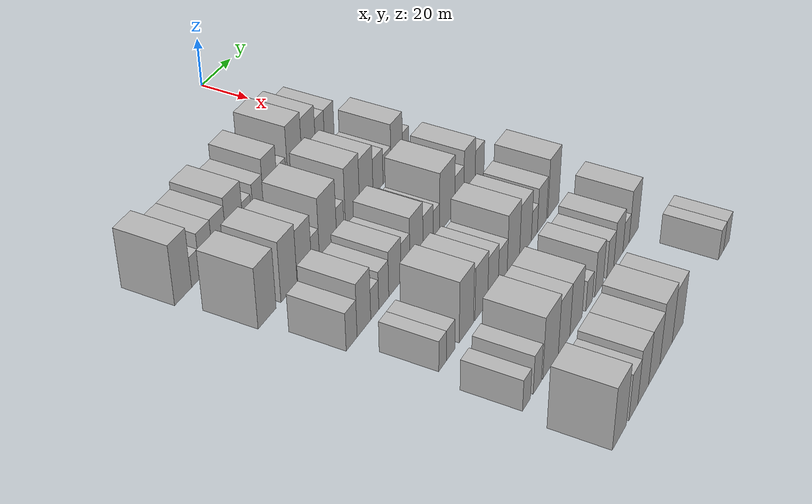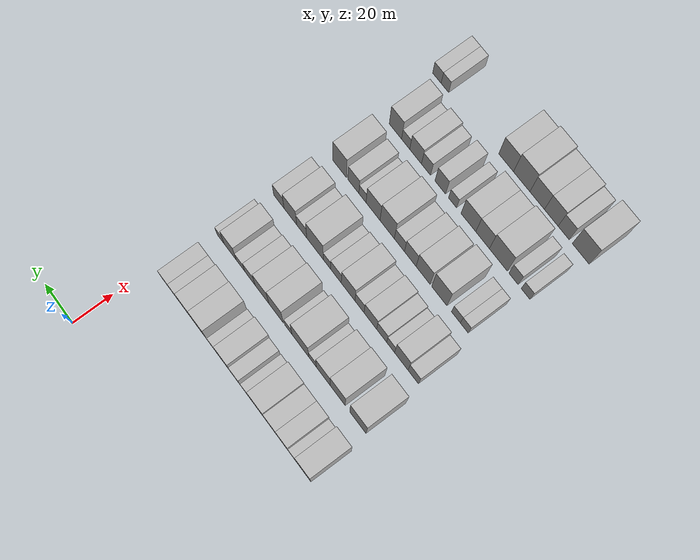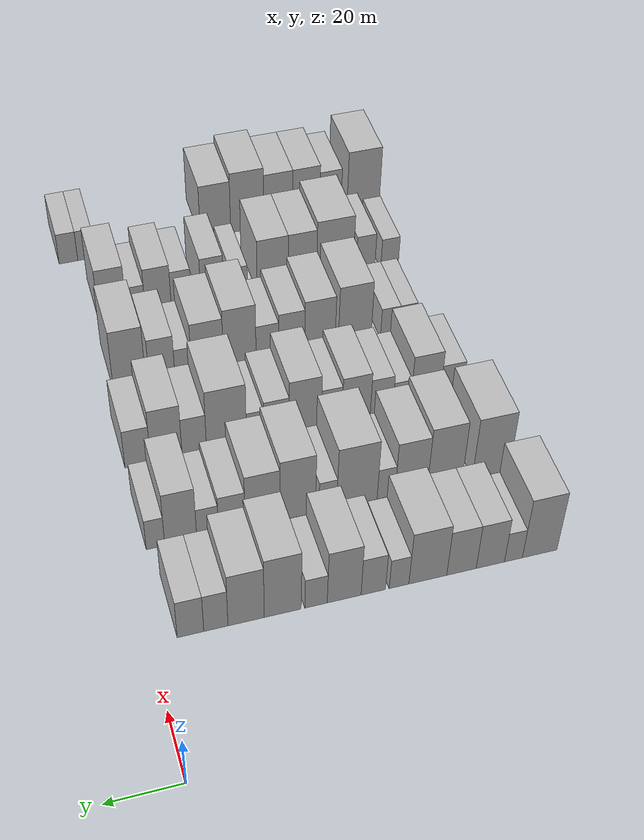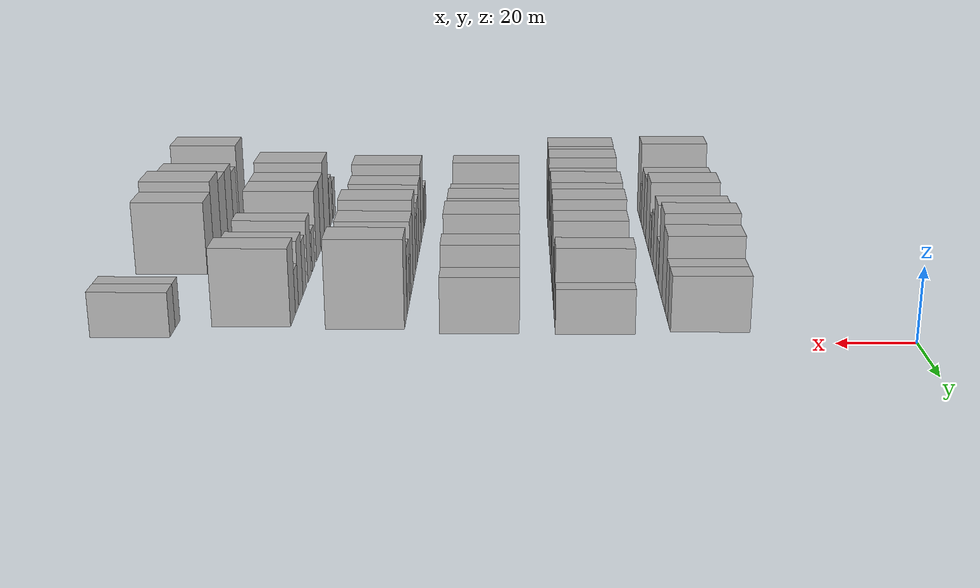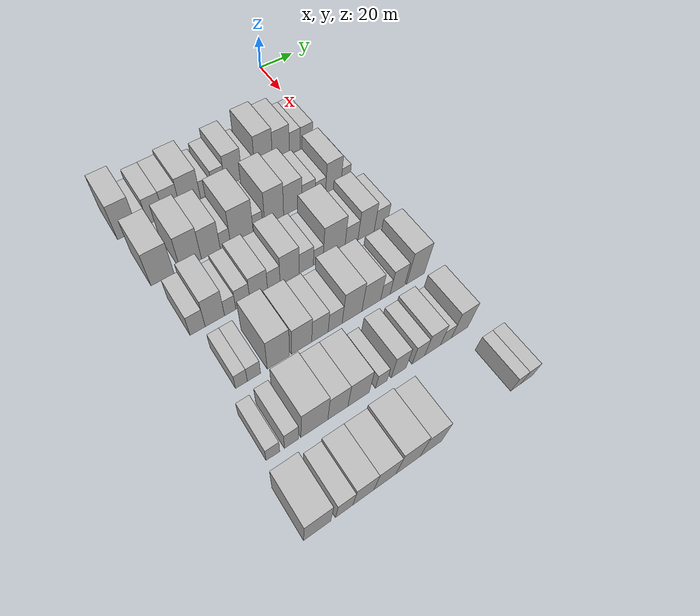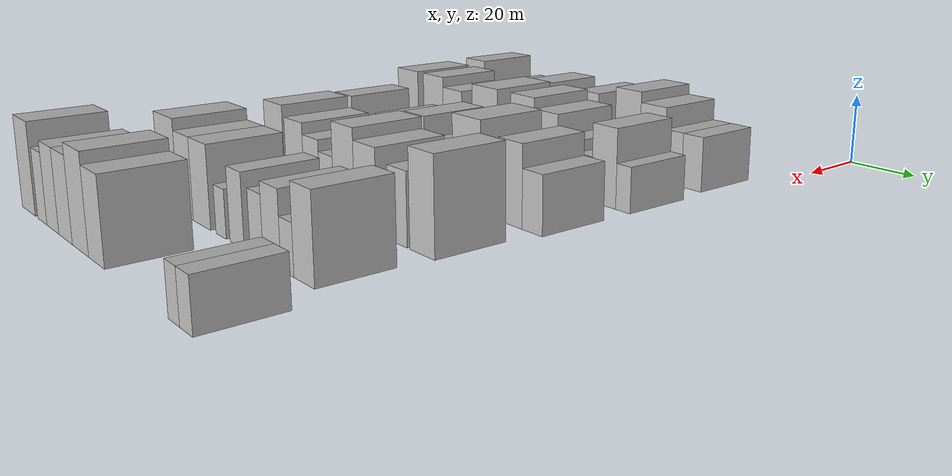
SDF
<sdf version="1.6">
 <world name="default">
  <model name="building_47">
   <static>1</static>
   <pose>50.0000 -105.0167 0 0.000000 0.000000 0.000000</pose>
   <link name="link">
    <pose>0 0 12.00 0 0 0</pose>
    <collision name="collision"><geometry><box><size>20.0000 9.7673 24.0000</size></box></geometry></collision>
    <visual name="visual">
     <cast_shadows>0</cast_shadows>
     <geometry><box><size>20.0000 9.7673 24.0000</size></box></geometry>
     <material>
      <script>
       <uri>model://HANNAS_wall/materials/scripts</uri>
       <uri>model://HANNAS_wall/materials/textures</uri>
       <name>vrc/HANNAS_wall</name>
      </script>
     </material>
    </visual>
   </link>
  </model>
  <model name="building_48">
   <static>1</static>
   <pose>50.0000 -97.6187 0 0.000000 0.000000 0.000000</pose>
   <link name="link">
    <pose>0 0 6.00 0 0 0</pose>
    <collision name="collision"><geometry><box><size>20.0000 5.0287 12.0000</size></box></geometry></collision>
    <visual name="visual">
     <cast_shadows>0</cast_shadows>
     <geometry><box><size>20.0000 5.0287 12.0000</size></box></geometry>
     <material>
      <script>
       <uri>model://HANNAS_wall/materials/scripts</uri>
       <uri>model://HANNAS_wall/materials/textures</uri>
       <name>vrc/HANNAS_wall</name>
      </script>
     </material>
    </visual>
   </link>
  </model>
  <model name="building_49">
   <static>1</static>
   <pose>50.0000 -91.1613 0 0.000000 0.000000 0.000000</pose>
   <link name="link">
    <pose>0 0 9.00 0 0 0</pose>
    <collision name="collision"><geometry><box><size>20.0000 7.8860 18.0000</size></box></geometry></collision>
    <visual name="visual">
     <cast_shadows>0</cast_shadows>
     <geometry><box><size>20.0000 7.8860 18.0000</size></box></geometry>
     <material>
      <script>
       <uri>model://HANNAS_wall/materials/scripts</uri>
       <uri>model://HANNAS_wall/materials/textures</uri>
       <name>vrc/HANNAS_wall</name>
      </script>
     </material>
    </visual>
   </link>
  </model>
  <model name="building_50">
   <static>1</static>
   <pose>50.0000 -83.1156 0 0.000000 0.000000 0.000000</pose>
   <link name="link">
    <pose>0 0 9.00 0 0 0</pose>
    <collision name="collision"><geometry><box><size>20.0000 8.2054 18.0000</size></box></geometry></collision>
    <visual name="visual">
     <cast_shadows>0</cast_shadows>
     <geometry><box><size>20.0000 8.2054 18.0000</size></box></geometry>
     <material>
      <script>
       <uri>model://HANNAS_wall/materials/scripts</uri>
       <uri>model://HANNAS_wall/materials/textures</uri>
       <name>vrc/HANNAS_wall</name>
      </script>
     </material>
    </visual>
   </link>
  </model>
  <model name="building_51">
   <static>1</static>
   <pose>50.0000 -73.8096 0 0.000000 0.000000 0.000000</pose>
   <link name="link">
    <pose>0 0 10.50 0 0 0</pose>
    <collision name="collision"><geometry><box><size>20.0000 10.4066 21.0000</size></box></geometry></collision>
    <visual name="visual">
     <cast_shadows>0</cast_shadows>
     <geometry><box><size>20.0000 10.4066 21.0000</size></box></geometry>
     <material>
      <script>
       <uri>model://HANNAS_wall/materials/scripts</uri>
       <uri>model://HANNAS_wall/materials/textures</uri>
       <name>vrc/HANNAS_wall</name>
      </script>
     </material>
    </visual>
   </link>
  </model>
  <model name="building_52">
   <static>1</static>
   <pose>50.0000 -65.9162 0 0.000000 0.000000 0.000000</pose>
   <link name="link">
    <pose>0 0 6.00 0 0 0</pose>
    <collision name="collision"><geometry><box><size>20.0000 5.3802 12.0000</size></box></geometry></collision>
    <visual name="visual">
     <cast_shadows>0</cast_shadows>
     <geometry><box><size>20.0000 5.3802 12.0000</size></box></geometry>
     <material>
      <script>
       <uri>model://HANNAS_wall/materials/scripts</uri>
       <uri>model://HANNAS_wall/materials/textures</uri>
       <name>vrc/HANNAS_wall</name>
      </script>
     </material>
    </visual>
   </link>
  </model>
  <model name="building_53">
   <static>1</static>
   <pose>50.0000 -58.9082 0 0.000000 0.000000 0.000000</pose>
   <link name="link">
    <pose>0 0 7.50 0 0 0</pose>
    <collision name="collision"><geometry><box><size>20.0000 6.6358 15.0000</size></box></geometry></collision>
    <visual name="visual">
     <cast_shadows>0</cast_shadows>
     <geometry><box><size>20.0000 6.6358 15.0000</size></box></geometry>
     <material>
      <script>
       <uri>model://HANNAS_wall/materials/scripts</uri>
       <uri>model://HANNAS_wall/materials/textures</uri>
       <name>vrc/HANNAS_wall</name>
      </script>
     </material>
    </visual>
   </link>
  </model>
  <model name="building_54">
   <static>1</static>
   <pose>50.0000 -51.0289 0 0.000000 0.000000 0.000000</pose>
   <link name="link">
    <pose>0 0 10.50 0 0 0</pose>
    <collision name="collision"><geometry><box><size>20.0000 9.1228 21.0000</size></box></geometry></collision>
    <visual name="visual">
     <cast_shadows>0</cast_shadows>
     <geometry><box><size>20.0000 9.1228 21.0000</size></box></geometry>
     <material>
      <script>
       <uri>model://HANNAS_wall/materials/scripts</uri>
       <uri>model://HANNAS_wall/materials/textures</uri>
       <name>vrc/HANNAS_wall</name>
      </script>
     </material>
    </visual>
   </link>
  </model>
  <model name="building_55">
   <static>1</static>
   <pose>50.0000 -43.4770 0 0.000000 0.000000 0.000000</pose>
   <link name="link">
    <pose>0 0 6.00 0 0 0</pose>
    <collision name="collision"><geometry><box><size>20.0000 5.9809 12.0000</size></box></geometry></collision>
    <visual name="visual">
     <cast_shadows>0</cast_shadows>
     <geometry><box><size>20.0000 5.9809 12.0000</size></box></geometry>
     <material>
      <script>
       <uri>model://HANNAS_wall/materials/scripts</uri>
       <uri>model://HANNAS_wall/materials/textures</uri>
       <name>vrc/HANNAS_wall</name>
      </script>
     </material>
    </visual>
   </link>
  </model>
  <model name="building_56">
   <static>1</static>
   <pose>50.0000 -34.5815 0 0.000000 0.000000 0.000000</pose>
   <link name="link">
    <pose>0 0 12.00 0 0 0</pose>
    <collision name="collision"><geometry><box><size>20.0000 9.8103 24.0000</size></box></geometry></collision>
    <visual name="visual">
     <cast_shadows>0</cast_shadows>
     <geometry><box><size>20.0000 9.8103 24.0000</size></box></geometry>
     <material>
      <script>
       <uri>model://HANNAS_wall/materials/scripts</uri>
       <uri>model://HANNAS_wall/materials/textures</uri>
       <name>vrc/HANNAS_wall</name>
      </script>
     </material>
    </visual>
   </link>
  </model>
  <model name="building_57">
   <static>1</static>
   <pose>50.0000 -24.9309 0 0.000000 0.000000 0.000000</pose>
   <link name="link">
    <pose>0 0 10.50 0 0 0</pose>
    <collision name="collision"><geometry><box><size>20.0000 9.4910 21.0000</size></box></geometry></collision>
    <visual name="visual">
     <cast_shadows>0</cast_shadows>
     <geometry><box><size>20.0000 9.4910 21.0000</size></box></geometry>
     <material>
      <script>
       <uri>model://HANNAS_wall/materials/scripts</uri>
       <uri>model://HANNAS_wall/materials/textures</uri>
       <name>vrc/HANNAS_wall</name>
      </script>
     </material>
    </visual>
   </link>
  </model>
  <model name="building_58">
   <static>1</static>
   <pose>50.0000 -17.0237 0 0.000000 0.000000 0.000000</pose>
   <link name="link">
    <pose>0 0 7.50 0 0 0</pose>
    <collision name="collision"><geometry><box><size>20.0000 6.3234 15.0000</size></box></geometry></collision>
    <visual name="visual">
     <cast_shadows>0</cast_shadows>
     <geometry><box><size>20.0000 6.3234 15.0000</size></box></geometry>
     <material>
      <script>
       <uri>model://HANNAS_wall/materials/scripts</uri>
       <uri>model://HANNAS_wall/materials/textures</uri>
       <name>vrc/HANNAS_wall</name>
      </script>
     </material>
    </visual>
   </link>
  </model>
  <model name="building_59">
   <static>1</static>
   <pose>50.0000 -10.4094 0 0.000000 0.000000 0.000000</pose>
   <link name="link">
    <pose>0 0 7.50 0 0 0</pose>
    <collision name="collision"><geometry><box><size>20.0000 6.9051 15.0000</size></box></geometry></collision>
    <visual name="visual">
     <cast_shadows>0</cast_shadows>
     <geometry><box><size>20.0000 6.9051 15.0000</size></box></geometry>
     <material>
      <script>
       <uri>model://HANNAS_wall/materials/scripts</uri>
       <uri>model://HANNAS_wall/materials/textures</uri>
       <name>vrc/HANNAS_wall</name>
      </script>
     </material>
    </visual>
   </link>
  </model>
  <model name="building_155">
   <static>1</static>
   <pose>79.0000 -102.3456 0 0.000000 0.000000 0.000000</pose>
   <link name="link">
    <pose>0 0 12.00 0 0 0</pose>
    <collision name="collision"><geometry><box><size>20.0000 10.8867 24.0000</size></box></geometry></collision>
    <visual name="visual">
     <cast_shadows>0</cast_shadows>
     <geometry><box><size>20.0000 10.8867 24.0000</size></box></geometry>
     <material>
      <script>
       <uri>model://HANNAS_wall/materials/scripts</uri>
       <uri>model://HANNAS_wall/materials/textures</uri>
       <name>vrc/HANNAS_wall</name>
      </script>
     </material>
    </visual>
   </link>
  </model>
  <model name="building_156">
   <static>1</static>
   <pose>79.0000 -88.8381 0 0.000000 0.000000 0.000000</pose>
   <link name="link">
    <pose>0 0 12.00 0 0 0</pose>
    <collision name="collision"><geometry><box><size>20.0000 10.1282 24.0000</size></box></geometry></collision>
    <visual name="visual">
     <cast_shadows>0</cast_shadows>
     <geometry><box><size>20.0000 10.1282 24.0000</size></box></geometry>
     <material>
      <script>
       <uri>model://HANNAS_wall/materials/scripts</uri>
       <uri>model://HANNAS_wall/materials/textures</uri>
       <name>vrc/HANNAS_wall</name>
      </script>
     </material>
    </visual>
   </link>
  </model>
  <model name="building_157">
   <static>1</static>
   <pose>79.0000 -79.1110 0 0.000000 0.000000 0.000000</pose>
   <link name="link">
    <pose>0 0 10.50 0 0 0</pose>
    <collision name="collision"><geometry><box><size>20.0000 9.3259 21.0000</size></box></geometry></collision>
    <visual name="visual">
     <cast_shadows>0</cast_shadows>
     <geometry><box><size>20.0000 9.3259 21.0000</size></box></geometry>
     <material>
      <script>
       <uri>model://HANNAS_wall/materials/scripts</uri>
       <uri>model://HANNAS_wall/materials/textures</uri>
       <name>vrc/HANNAS_wall</name>
      </script>
     </material>
    </visual>
   </link>
  </model>
  <model name="building_158">
   <static>1</static>
   <pose>79.0000 -71.9010 0 0.000000 0.000000 0.000000</pose>
   <link name="link">
    <pose>0 0 6.00 0 0 0</pose>
    <collision name="collision"><geometry><box><size>20.0000 5.0941 12.0000</size></box></geometry></collision>
    <visual name="visual">
     <cast_shadows>0</cast_shadows>
     <geometry><box><size>20.0000 5.0941 12.0000</size></box></geometry>
     <material>
      <script>
       <uri>model://HANNAS_wall/materials/scripts</uri>
       <uri>model://HANNAS_wall/materials/textures</uri>
       <name>vrc/HANNAS_wall</name>
      </script>
     </material>
    </visual>
   </link>
  </model>
  <model name="building_159">
   <static>1</static>
   <pose>79.0000 -63.5982 0 0.000000 0.000000 0.000000</pose>
   <link name="link">
    <pose>0 0 12.00 0 0 0</pose>
    <collision name="collision"><geometry><box><size>20.0000 11.5114 24.0000</size></box></geometry></collision>
    <visual name="visual">
     <cast_shadows>0</cast_shadows>
     <geometry><box><size>20.0000 11.5114 24.0000</size></box></geometry>
     <material>
      <script>
       <uri>model://HANNAS_wall/materials/scripts</uri>
       <uri>model://HANNAS_wall/materials/textures</uri>
       <name>vrc/HANNAS_wall</name>
      </script>
     </material>
    </visual>
   </link>
  </model>
  <model name="building_160">
   <static>1</static>
   <pose>79.0000 -55.3218 0 0.000000 0.000000 0.000000</pose>
   <link name="link">
    <pose>0 0 6.00 0 0 0</pose>
    <collision name="collision"><geometry><box><size>20.0000 5.0414 12.0000</size></box></geometry></collision>
    <visual name="visual">
     <cast_shadows>0</cast_shadows>
     <geometry><box><size>20.0000 5.0414 12.0000</size></box></geometry>
     <material>
      <script>
       <uri>model://HANNAS_wall/materials/scripts</uri>
       <uri>model://HANNAS_wall/materials/textures</uri>
       <name>vrc/HANNAS_wall</name>
      </script>
     </material>
    </visual>
   </link>
  </model>
  <model name="building_161">
   <static>1</static>
   <pose>79.0000 -46.8362 0 0.000000 0.000000 0.000000</pose>
   <link name="link">
    <pose>0 0 12.00 0 0 0</pose>
    <collision name="collision"><geometry><box><size>20.0000 9.9298 24.0000</size></box></geometry></collision>
    <visual name="visual">
     <cast_shadows>0</cast_shadows>
     <geometry><box><size>20.0000 9.9298 24.0000</size></box></geometry>
     <material>
      <script>
       <uri>model://HANNAS_wall/materials/scripts</uri>
       <uri>model://HANNAS_wall/materials/textures</uri>
       <name>vrc/HANNAS_wall</name>
      </script>
     </material>
    </visual>
   </link>
  </model>
  <model name="building_162">
   <static>1</static>
   <pose>79.0000 -37.0573 0 0.000000 0.000000 0.000000</pose>
   <link name="link">
    <pose>0 0 10.50 0 0 0</pose>
    <collision name="collision"><geometry><box><size>20.0000 9.6281 21.0000</size></box></geometry></collision>
    <visual name="visual">
     <cast_shadows>0</cast_shadows>
     <geometry><box><size>20.0000 9.6281 21.0000</size></box></geometry>
     <material>
      <script>
       <uri>model://HANNAS_wall/materials/scripts</uri>
       <uri>model://HANNAS_wall/materials/textures</uri>
       <name>vrc/HANNAS_wall</name>
      </script>
     </material>
    </visual>
   </link>
  </model>
  <model name="building_163">
   <static>1</static>
   <pose>79.0000 -28.5799 0 0.000000 0.000000 0.000000</pose>
   <link name="link">
    <pose>0 0 7.50 0 0 0</pose>
    <collision name="collision"><geometry><box><size>20.0000 7.3267 15.0000</size></box></geometry></collision>
    <visual name="visual">
     <cast_shadows>0</cast_shadows>
     <geometry><box><size>20.0000 7.3267 15.0000</size></box></geometry>
     <material>
      <script>
       <uri>model://HANNAS_wall/materials/scripts</uri>
       <uri>model://HANNAS_wall/materials/textures</uri>
       <name>vrc/HANNAS_wall</name>
      </script>
     </material>
    </visual>
   </link>
  </model>
  <model name="building_164">
   <static>1</static>
   <pose>79.0000 -21.9367 0 0.000000 0.000000 0.000000</pose>
   <link name="link">
    <pose>0 0 6.00 0 0 0</pose>
    <collision name="collision"><geometry><box><size>20.0000 5.9596 12.0000</size></box></geometry></collision>
    <visual name="visual">
     <cast_shadows>0</cast_shadows>
     <geometry><box><size>20.0000 5.9596 12.0000</size></box></geometry>
     <material>
      <script>
       <uri>model://HANNAS_wall/materials/scripts</uri>
       <uri>model://HANNAS_wall/materials/textures</uri>
       <name>vrc/HANNAS_wall</name>
      </script>
     </material>
    </visual>
   </link>
  </model>
  <model name="building_165">
   <static>1</static>
   <pose>79.0000 -14.5970 0 0.000000 0.000000 0.000000</pose>
   <link name="link">
    <pose>0 0 10.50 0 0 0</pose>
    <collision name="collision"><geometry><box><size>20.0000 8.7198 21.0000</size></box></geometry></collision>
    <visual name="visual">
     <cast_shadows>0</cast_shadows>
     <geometry><box><size>20.0000 8.7198 21.0000</size></box></geometry>
     <material>
      <script>
       <uri>model://HANNAS_wall/materials/scripts</uri>
       <uri>model://HANNAS_wall/materials/textures</uri>
       <name>vrc/HANNAS_wall</name>
      </script>
     </material>
    </visual>
   </link>
  </model>
  <model name="building_166">
   <static>1</static>
   <pose>79.0000 -7.7248 0 0.000000 0.000000 0.000000</pose>
   <link name="link">
    <pose>0 0 6.00 0 0 0</pose>
    <collision name="collision"><geometry><box><size>20.0000 5.0246 12.0000</size></box></geometry></collision>
    <visual name="visual">
     <cast_shadows>0</cast_shadows>
     <geometry><box><size>20.0000 5.0246 12.0000</size></box></geometry>
     <material>
      <script>
       <uri>model://HANNAS_wall/materials/scripts</uri>
       <uri>model://HANNAS_wall/materials/textures</uri>
       <name>vrc/HANNAS_wall</name>
      </script>
     </material>
    </visual>
   </link>
  </model>
  <model name="building_272">
   <static>1</static>
   <pose>108.0000 -101.1401 0 0.000000 0.000000 0.000000</pose>
   <link name="link">
    <pose>0 0 7.50 0 0 0</pose>
    <collision name="collision"><geometry><box><size>20.0000 6.9360 15.0000</size></box></geometry></collision>
    <visual name="visual">
     <cast_shadows>0</cast_shadows>
     <geometry><box><size>20.0000 6.9360 15.0000</size></box></geometry>
     <material>
      <script>
       <uri>model://HANNAS_wall/materials/scripts</uri>
       <uri>model://HANNAS_wall/materials/textures</uri>
       <name>vrc/HANNAS_wall</name>
      </script>
     </material>
    </visual>
   </link>
  </model>
  <model name="building_273">
   <static>1</static>
   <pose>108.0000 -93.2131 0 0.000000 0.000000 0.000000</pose>
   <link name="link">
    <pose>0 0 10.50 0 0 0</pose>
    <collision name="collision"><geometry><box><size>20.0000 8.9180 21.0000</size></box></geometry></collision>
    <visual name="visual">
     <cast_shadows>0</cast_shadows>
     <geometry><box><size>20.0000 8.9180 21.0000</size></box></geometry>
     <material>
      <script>
       <uri>model://HANNAS_wall/materials/scripts</uri>
       <uri>model://HANNAS_wall/materials/textures</uri>
       <name>vrc/HANNAS_wall</name>
      </script>
     </material>
    </visual>
   </link>
  </model>
  <model name="building_274">
   <static>1</static>
   <pose>108.0000 -86.0890 0 0.000000 0.000000 0.000000</pose>
   <link name="link">
    <pose>0 0 6.00 0 0 0</pose>
    <collision name="collision"><geometry><box><size>20.0000 5.3302 12.0000</size></box></geometry></collision>
    <visual name="visual">
     <cast_shadows>0</cast_shadows>
     <geometry><box><size>20.0000 5.3302 12.0000</size></box></geometry>
     <material>
      <script>
       <uri>model://HANNAS_wall/materials/scripts</uri>
       <uri>model://HANNAS_wall/materials/textures</uri>
       <name>vrc/HANNAS_wall</name>
      </script>
     </material>
    </visual>
   </link>
  </model>
  <model name="building_275">
   <static>1</static>
   <pose>108.0000 -80.0548 0 0.000000 0.000000 0.000000</pose>
   <link name="link">
    <pose>0 0 7.50 0 0 0</pose>
    <collision name="collision"><geometry><box><size>20.0000 6.7381 15.0000</size></box></geometry></collision>
    <visual name="visual">
     <cast_shadows>0</cast_shadows>
     <geometry><box><size>20.0000 6.7381 15.0000</size></box></geometry>
     <material>
      <script>
       <uri>model://HANNAS_wall/materials/scripts</uri>
       <uri>model://HANNAS_wall/materials/textures</uri>
       <name>vrc/HANNAS_wall</name>
      </script>
     </material>
    </visual>
   </link>
  </model>
  <model name="building_276">
   <static>1</static>
   <pose>108.0000 -72.4371 0 0.000000 0.000000 0.000000</pose>
   <link name="link">
    <pose>0 0 9.00 0 0 0</pose>
    <collision name="collision"><geometry><box><size>20.0000 8.4974 18.0000</size></box></geometry></collision>
    <visual name="visual">
     <cast_shadows>0</cast_shadows>
     <geometry><box><size>20.0000 8.4974 18.0000</size></box></geometry>
     <material>
      <script>
       <uri>model://HANNAS_wall/materials/scripts</uri>
       <uri>model://HANNAS_wall/materials/textures</uri>
       <name>vrc/HANNAS_wall</name>
      </script>
     </material>
    </visual>
   </link>
  </model>
  <model name="building_277">
   <static>1</static>
   <pose>108.0000 -65.1126 0 0.000000 0.000000 0.000000</pose>
   <link name="link">
    <pose>0 0 7.50 0 0 0</pose>
    <collision name="collision"><geometry><box><size>20.0000 6.1515 15.0000</size></box></geometry></collision>
    <visual name="visual">
     <cast_shadows>0</cast_shadows>
     <geometry><box><size>20.0000 6.1515 15.0000</size></box></geometry>
     <material>
      <script>
       <uri>model://HANNAS_wall/materials/scripts</uri>
       <uri>model://HANNAS_wall/materials/textures</uri>
       <name>vrc/HANNAS_wall</name>
      </script>
     </material>
    </visual>
   </link>
  </model>
  <model name="building_278">
   <static>1</static>
   <pose>108.0000 -57.3260 0 0.000000 0.000000 0.000000</pose>
   <link name="link">
    <pose>0 0 10.50 0 0 0</pose>
    <collision name="collision"><geometry><box><size>20.0000 9.4217 21.0000</size></box></geometry></collision>
    <visual name="visual">
     <cast_shadows>0</cast_shadows>
     <geometry><box><size>20.0000 9.4217 21.0000</size></box></geometry>
     <material>
      <script>
       <uri>model://HANNAS_wall/materials/scripts</uri>
       <uri>model://HANNAS_wall/materials/textures</uri>
       <name>vrc/HANNAS_wall</name>
      </script>
     </material>
    </visual>
   </link>
  </model>
  <model name="building_279">
   <static>1</static>
   <pose>108.0000 -48.9235 0 0.000000 0.000000 0.000000</pose>
   <link name="link">
    <pose>0 0 7.50 0 0 0</pose>
    <collision name="collision"><geometry><box><size>20.0000 7.3835 15.0000</size></box></geometry></collision>
    <visual name="visual">
     <cast_shadows>0</cast_shadows>
     <geometry><box><size>20.0000 7.3835 15.0000</size></box></geometry>
     <material>
      <script>
       <uri>model://HANNAS_wall/materials/scripts</uri>
       <uri>model://HANNAS_wall/materials/textures</uri>
       <name>vrc/HANNAS_wall</name>
      </script>
     </material>
    </visual>
   </link>
  </model>
  <model name="building_280">
   <static>1</static>
   <pose>108.0000 -42.7363 0 0.000000 0.000000 0.000000</pose>
   <link name="link">
    <pose>0 0 6.00 0 0 0</pose>
    <collision name="collision"><geometry><box><size>20.0000 4.9908 12.0000</size></box></geometry></collision>
    <visual name="visual">
     <cast_shadows>0</cast_shadows>
     <geometry><box><size>20.0000 4.9908 12.0000</size></box></geometry>
     <material>
      <script>
       <uri>model://HANNAS_wall/materials/scripts</uri>
       <uri>model://HANNAS_wall/materials/textures</uri>
       <name>vrc/HANNAS_wall</name>
      </script>
     </material>
    </visual>
   </link>
  </model>
  <model name="building_281">
   <static>1</static>
   <pose>108.0000 -34.4739 0 0.000000 0.000000 0.000000</pose>
   <link name="link">
    <pose>0 0 12.00 0 0 0</pose>
    <collision name="collision"><geometry><box><size>20.0000 11.5339 24.0000</size></box></geometry></collision>
    <visual name="visual">
     <cast_shadows>0</cast_shadows>
     <geometry><box><size>20.0000 11.5339 24.0000</size></box></geometry>
     <material>
      <script>
       <uri>model://HANNAS_wall/materials/scripts</uri>
       <uri>model://HANNAS_wall/materials/textures</uri>
       <name>vrc/HANNAS_wall</name>
      </script>
     </material>
    </visual>
   </link>
  </model>
  <model name="building_282">
   <static>1</static>
   <pose>108.0000 -25.1871 0 0.000000 0.000000 0.000000</pose>
   <link name="link">
    <pose>0 0 7.50 0 0 0</pose>
    <collision name="collision"><geometry><box><size>20.0000 7.0398 15.0000</size></box></geometry></collision>
    <visual name="visual">
     <cast_shadows>0</cast_shadows>
     <geometry><box><size>20.0000 7.0398 15.0000</size></box></geometry>
     <material>
      <script>
       <uri>model://HANNAS_wall/materials/scripts</uri>
       <uri>model://HANNAS_wall/materials/textures</uri>
       <name>vrc/HANNAS_wall</name>
      </script>
     </material>
    </visual>
   </link>
  </model>
  <model name="building_283">
   <static>1</static>
   <pose>108.0000 -17.1904 0 0.000000 0.000000 0.000000</pose>
   <link name="link">
    <pose>0 0 10.50 0 0 0</pose>
    <collision name="collision"><geometry><box><size>20.0000 8.9537 21.0000</size></box></geometry></collision>
    <visual name="visual">
     <cast_shadows>0</cast_shadows>
     <geometry><box><size>20.0000 8.9537 21.0000</size></box></geometry>
     <material>
      <script>
       <uri>model://HANNAS_wall/materials/scripts</uri>
       <uri>model://HANNAS_wall/materials/textures</uri>
       <name>vrc/HANNAS_wall</name>
      </script>
     </material>
    </visual>
   </link>
  </model>
  <model name="building_284">
   <static>1</static>
   <pose>108.0000 -9.0674 0 0.000000 0.000000 0.000000</pose>
   <link name="link">
    <pose>0 0 7.50 0 0 0</pose>
    <collision name="collision"><geometry><box><size>20.0000 7.2923 15.0000</size></box></geometry></collision>
    <visual name="visual">
     <cast_shadows>0</cast_shadows>
     <geometry><box><size>20.0000 7.2923 15.0000</size></box></geometry>
     <material>
      <script>
       <uri>model://HANNAS_wall/materials/scripts</uri>
       <uri>model://HANNAS_wall/materials/textures</uri>
       <name>vrc/HANNAS_wall</name>
      </script>
     </material>
    </visual>
   </link>
  </model>
  <model name="building_386">
   <static>1</static>
   <pose>137.0000 -97.7580 0 0.000000 0.000000 0.000000</pose>
   <link name="link">
    <pose>0 0 6.00 0 0 0</pose>
    <collision name="collision"><geometry><box><size>20.0000 5.2160 12.0000</size></box></geometry></collision>
    <visual name="visual">
     <cast_shadows>0</cast_shadows>
     <geometry><box><size>20.0000 5.2160 12.0000</size></box></geometry>
     <material>
      <script>
       <uri>model://HANNAS_wall/materials/scripts</uri>
       <uri>model://HANNAS_wall/materials/textures</uri>
       <name>vrc/HANNAS_wall</name>
      </script>
     </material>
    </visual>
   </link>
  </model>
  <model name="building_387">
   <static>1</static>
   <pose>137.0000 -92.1898 0 0.000000 0.000000 0.000000</pose>
   <link name="link">
    <pose>0 0 6.00 0 0 0</pose>
    <collision name="collision"><geometry><box><size>20.0000 5.9204 12.0000</size></box></geometry></collision>
    <visual name="visual">
     <cast_shadows>0</cast_shadows>
     <geometry><box><size>20.0000 5.9204 12.0000</size></box></geometry>
     <material>
      <script>
       <uri>model://HANNAS_wall/materials/scripts</uri>
       <uri>model://HANNAS_wall/materials/textures</uri>
       <name>vrc/HANNAS_wall</name>
      </script>
     </material>
    </visual>
   </link>
  </model>
  <model name="building_388">
   <static>1</static>
   <pose>137.0000 -81.1083 0 0.000000 0.000000 0.000000</pose>
   <link name="link">
    <pose>0 0 12.00 0 0 0</pose>
    <collision name="collision"><geometry><box><size>20.0000 10.2426 24.0000</size></box></geometry></collision>
    <visual name="visual">
     <cast_shadows>0</cast_shadows>
     <geometry><box><size>20.0000 10.2426 24.0000</size></box></geometry>
     <material>
      <script>
       <uri>model://HANNAS_wall/materials/scripts</uri>
       <uri>model://HANNAS_wall/materials/textures</uri>
       <name>vrc/HANNAS_wall</name>
      </script>
     </material>
    </visual>
   </link>
  </model>
  <model name="building_389">
   <static>1</static>
   <pose>137.0000 -70.2677 0 0.000000 0.000000 0.000000</pose>
   <link name="link">
    <pose>0 0 10.50 0 0 0</pose>
    <collision name="collision"><geometry><box><size>20.0000 9.4386 21.0000</size></box></geometry></collision>
    <visual name="visual">
     <cast_shadows>0</cast_shadows>
     <geometry><box><size>20.0000 9.4386 21.0000</size></box></geometry>
     <material>
      <script>
       <uri>model://HANNAS_wall/materials/scripts</uri>
       <uri>model://HANNAS_wall/materials/textures</uri>
       <name>vrc/HANNAS_wall</name>
      </script>
     </material>
    </visual>
   </link>
  </model>
  <model name="building_390">
   <static>1</static>
   <pose>137.0000 -61.5746 0 0.000000 0.000000 0.000000</pose>
   <link name="link">
    <pose>0 0 9.00 0 0 0</pose>
    <collision name="collision"><geometry><box><size>20.0000 7.9477 18.0000</size></box></geometry></collision>
    <visual name="visual">
     <cast_shadows>0</cast_shadows>
     <geometry><box><size>20.0000 7.9477 18.0000</size></box></geometry>
     <material>
      <script>
       <uri>model://HANNAS_wall/materials/scripts</uri>
       <uri>model://HANNAS_wall/materials/textures</uri>
       <name>vrc/HANNAS_wall</name>
      </script>
     </material>
    </visual>
   </link>
  </model>
  <model name="building_391">
   <static>1</static>
   <pose>137.0000 -54.1661 0 0.000000 0.000000 0.000000</pose>
   <link name="link">
    <pose>0 0 7.50 0 0 0</pose>
    <collision name="collision"><geometry><box><size>20.0000 6.8692 15.0000</size></box></geometry></collision>
    <visual name="visual">
     <cast_shadows>0</cast_shadows>
     <geometry><box><size>20.0000 6.8692 15.0000</size></box></geometry>
     <material>
      <script>
       <uri>model://HANNAS_wall/materials/scripts</uri>
       <uri>model://HANNAS_wall/materials/textures</uri>
       <name>vrc/HANNAS_wall</name>
      </script>
     </material>
    </visual>
   </link>
  </model>
  <model name="building_392">
   <static>1</static>
   <pose>137.0000 -45.8086 0 0.000000 0.000000 0.000000</pose>
   <link name="link">
    <pose>0 0 12.00 0 0 0</pose>
    <collision name="collision"><geometry><box><size>20.0000 9.8458 24.0000</size></box></geometry></collision>
    <visual name="visual">
     <cast_shadows>0</cast_shadows>
     <geometry><box><size>20.0000 9.8458 24.0000</size></box></geometry>
     <material>
      <script>
       <uri>model://HANNAS_wall/materials/scripts</uri>
       <uri>model://HANNAS_wall/materials/textures</uri>
       <name>vrc/HANNAS_wall</name>
      </script>
     </material>
    </visual>
   </link>
  </model>
  <model name="building_393">
   <static>1</static>
   <pose>137.0000 -36.0752 0 0.000000 0.000000 0.000000</pose>
   <link name="link">
    <pose>0 0 10.50 0 0 0</pose>
    <collision name="collision"><geometry><box><size>20.0000 9.6211 21.0000</size></box></geometry></collision>
    <visual name="visual">
     <cast_shadows>0</cast_shadows>
     <geometry><box><size>20.0000 9.6211 21.0000</size></box></geometry>
     <material>
      <script>
       <uri>model://HANNAS_wall/materials/scripts</uri>
       <uri>model://HANNAS_wall/materials/textures</uri>
       <name>vrc/HANNAS_wall</name>
      </script>
     </material>
    </visual>
   </link>
  </model>
  <model name="building_394">
   <static>1</static>
   <pose>137.0000 -28.7741 0 0.000000 0.000000 0.000000</pose>
   <link name="link">
    <pose>0 0 6.00 0 0 0</pose>
    <collision name="collision"><geometry><box><size>20.0000 4.9810 12.0000</size></box></geometry></collision>
    <visual name="visual">
     <cast_shadows>0</cast_shadows>
     <geometry><box><size>20.0000 4.9810 12.0000</size></box></geometry>
     <material>
      <script>
       <uri>model://HANNAS_wall/materials/scripts</uri>
       <uri>model://HANNAS_wall/materials/textures</uri>
       <name>vrc/HANNAS_wall</name>
      </script>
     </material>
    </visual>
   </link>
  </model>
  <model name="building_395">
   <static>1</static>
   <pose>137.0000 -22.4597 0 0.000000 0.000000 0.000000</pose>
   <link name="link">
    <pose>0 0 9.00 0 0 0</pose>
    <collision name="collision"><geometry><box><size>20.0000 7.6478 18.0000</size></box></geometry></collision>
    <visual name="visual">
     <cast_shadows>0</cast_shadows>
     <geometry><box><size>20.0000 7.6478 18.0000</size></box></geometry>
     <material>
      <script>
       <uri>model://HANNAS_wall/materials/scripts</uri>
       <uri>model://HANNAS_wall/materials/textures</uri>
       <name>vrc/HANNAS_wall</name>
      </script>
     </material>
    </visual>
   </link>
  </model>
  <model name="building_396">
   <static>1</static>
   <pose>137.0000 -12.8224 0 0.000000 0.000000 0.000000</pose>
   <link name="link">
    <pose>0 0 12.00 0 0 0</pose>
    <collision name="collision"><geometry><box><size>20.0000 9.6268 24.0000</size></box></geometry></collision>
    <visual name="visual">
     <cast_shadows>0</cast_shadows>
     <geometry><box><size>20.0000 9.6268 24.0000</size></box></geometry>
     <material>
      <script>
       <uri>model://HANNAS_wall/materials/scripts</uri>
       <uri>model://HANNAS_wall/materials/textures</uri>
       <name>vrc/HANNAS_wall</name>
      </script>
     </material>
    </visual>
   </link>
  </model>
  <model name="building_499">
   <static>1</static>
   <pose>166.0000 -101.6750 0 0.000000 0.000000 0.000000</pose>
   <link name="link">
    <pose>0 0 6.00 0 0 0</pose>
    <collision name="collision"><geometry><box><size>20.0000 5.7528 12.0000</size></box></geometry></collision>
    <visual name="visual">
     <cast_shadows>0</cast_shadows>
     <geometry><box><size>20.0000 5.7528 12.0000</size></box></geometry>
     <material>
      <script>
       <uri>model://HANNAS_wall/materials/scripts</uri>
       <uri>model://HANNAS_wall/materials/textures</uri>
       <name>vrc/HANNAS_wall</name>
      </script>
     </material>
    </visual>
   </link>
  </model>
  <model name="building_500">
   <static>1</static>
   <pose>166.0000 -93.7442 0 0.000000 0.000000 0.000000</pose>
   <link name="link">
    <pose>0 0 7.50 0 0 0</pose>
    <collision name="collision"><geometry><box><size>20.0000 6.1087 15.0000</size></box></geometry></collision>
    <visual name="visual">
     <cast_shadows>0</cast_shadows>
     <geometry><box><size>20.0000 6.1087 15.0000</size></box></geometry>
     <material>
      <script>
       <uri>model://HANNAS_wall/materials/scripts</uri>
       <uri>model://HANNAS_wall/materials/textures</uri>
       <name>vrc/HANNAS_wall</name>
      </script>
     </material>
    </visual>
   </link>
  </model>
  <model name="building_501">
   <static>1</static>
   <pose>166.0000 -83.7411 0 0.000000 0.000000 0.000000</pose>
   <link name="link">
    <pose>0 0 12.00 0 0 0</pose>
    <collision name="collision"><geometry><box><size>20.0000 11.8975 24.0000</size></box></geometry></collision>
    <visual name="visual">
     <cast_shadows>0</cast_shadows>
     <geometry><box><size>20.0000 11.8975 24.0000</size></box></geometry>
     <material>
      <script>
       <uri>model://HANNAS_wall/materials/scripts</uri>
       <uri>model://HANNAS_wall/materials/textures</uri>
       <name>vrc/HANNAS_wall</name>
      </script>
     </material>
    </visual>
   </link>
  </model>
  <model name="building_502">
   <static>1</static>
   <pose>166.0000 -73.2415 0 0.000000 0.000000 0.000000</pose>
   <link name="link">
    <pose>0 0 10.50 0 0 0</pose>
    <collision name="collision"><geometry><box><size>20.0000 9.1017 21.0000</size></box></geometry></collision>
    <visual name="visual">
     <cast_shadows>0</cast_shadows>
     <geometry><box><size>20.0000 9.1017 21.0000</size></box></geometry>
     <material>
      <script>
       <uri>model://HANNAS_wall/materials/scripts</uri>
       <uri>model://HANNAS_wall/materials/textures</uri>
       <name>vrc/HANNAS_wall</name>
      </script>
     </material>
    </visual>
   </link>
  </model>
  <model name="building_503">
   <static>1</static>
   <pose>166.0000 -63.7197 0 0.000000 0.000000 0.000000</pose>
   <link name="link">
    <pose>0 0 10.50 0 0 0</pose>
    <collision name="collision"><geometry><box><size>20.0000 9.9419 21.0000</size></box></geometry></collision>
    <visual name="visual">
     <cast_shadows>0</cast_shadows>
     <geometry><box><size>20.0000 9.9419 21.0000</size></box></geometry>
     <material>
      <script>
       <uri>model://HANNAS_wall/materials/scripts</uri>
       <uri>model://HANNAS_wall/materials/textures</uri>
       <name>vrc/HANNAS_wall</name>
      </script>
     </material>
    </visual>
   </link>
  </model>
  <model name="building_504">
   <static>1</static>
   <pose>166.0000 -52.9971 0 0.000000 0.000000 0.000000</pose>
   <link name="link">
    <pose>0 0 6.00 0 0 0</pose>
    <collision name="collision"><geometry><box><size>20.0000 5.5033 12.0000</size></box></geometry></collision>
    <visual name="visual">
     <cast_shadows>0</cast_shadows>
     <geometry><box><size>20.0000 5.5033 12.0000</size></box></geometry>
     <material>
      <script>
       <uri>model://HANNAS_wall/materials/scripts</uri>
       <uri>model://HANNAS_wall/materials/textures</uri>
       <name>vrc/HANNAS_wall</name>
      </script>
     </material>
    </visual>
   </link>
  </model>
  <model name="building_505">
   <static>1</static>
   <pose>166.0000 -44.6227 0 0.000000 0.000000 0.000000</pose>
   <link name="link">
    <pose>0 0 9.00 0 0 0</pose>
    <collision name="collision"><geometry><box><size>20.0000 7.2455 18.0000</size></box></geometry></collision>
    <visual name="visual">
     <cast_shadows>0</cast_shadows>
     <geometry><box><size>20.0000 7.2455 18.0000</size></box></geometry>
     <material>
      <script>
       <uri>model://HANNAS_wall/materials/scripts</uri>
       <uri>model://HANNAS_wall/materials/textures</uri>
       <name>vrc/HANNAS_wall</name>
      </script>
     </material>
    </visual>
   </link>
  </model>
  <model name="building_506">
   <static>1</static>
   <pose>166.0000 -34.8719 0 0.000000 0.000000 0.000000</pose>
   <link name="link">
    <pose>0 0 7.50 0 0 0</pose>
    <collision name="collision"><geometry><box><size>20.0000 6.2560 15.0000</size></box></geometry></collision>
    <visual name="visual">
     <cast_shadows>0</cast_shadows>
     <geometry><box><size>20.0000 6.2560 15.0000</size></box></geometry>
     <material>
      <script>
       <uri>model://HANNAS_wall/materials/scripts</uri>
       <uri>model://HANNAS_wall/materials/textures</uri>
       <name>vrc/HANNAS_wall</name>
      </script>
     </material>
    </visual>
   </link>
  </model>
  <model name="building_507">
   <static>1</static>
   <pose>166.0000 -27.6907 0 0.000000 0.000000 0.000000</pose>
   <link name="link">
    <pose>0 0 9.00 0 0 0</pose>
    <collision name="collision"><geometry><box><size>20.0000 8.1064 18.0000</size></box></geometry></collision>
    <visual name="visual">
     <cast_shadows>0</cast_shadows>
     <geometry><box><size>20.0000 8.1064 18.0000</size></box></geometry>
     <material>
      <script>
       <uri>model://HANNAS_wall/materials/scripts</uri>
       <uri>model://HANNAS_wall/materials/textures</uri>
       <name>vrc/HANNAS_wall</name>
      </script>
     </material>
    </visual>
   </link>
  </model>
  <model name="building_508">
   <static>1</static>
   <pose>166.0000 -20.7923 0 0.000000 0.000000 0.000000</pose>
   <link name="link">
    <pose>0 0 6.00 0 0 0</pose>
    <collision name="collision"><geometry><box><size>20.0000 5.6905 12.0000</size></box></geometry></collision>
    <visual name="visual">
     <cast_shadows>0</cast_shadows>
     <geometry><box><size>20.0000 5.6905 12.0000</size></box></geometry>
     <material>
      <script>
       <uri>model://HANNAS_wall/materials/scripts</uri>
       <uri>model://HANNAS_wall/materials/textures</uri>
       <name>vrc/HANNAS_wall</name>
      </script>
     </material>
    </visual>
   </link>
  </model>
  <model name="building_509">
   <static>1</static>
   <pose>166.0000 -13.6455 0 0.000000 0.000000 0.000000</pose>
   <link name="link">
    <pose>0 0 10.50 0 0 0</pose>
    <collision name="collision"><geometry><box><size>20.0000 8.6031 21.0000</size></box></geometry></collision>
    <visual name="visual">
     <cast_shadows>0</cast_shadows>
     <geometry><box><size>20.0000 8.6031 21.0000</size></box></geometry>
     <material>
      <script>
       <uri>model://HANNAS_wall/materials/scripts</uri>
       <uri>model://HANNAS_wall/materials/textures</uri>
       <name>vrc/HANNAS_wall</name>
      </script>
     </material>
    </visual>
   </link>
  </model>
  <model name="building_616">
   <static>1</static>
   <pose>195.0000 -102.1775 0 0.000000 0.000000 0.000000</pose>
   <link name="link">
    <pose>0 0 12.00 0 0 0</pose>
    <collision name="collision"><geometry><box><size>20.0000 11.0299 24.0000</size></box></geometry></collision>
    <visual name="visual">
     <cast_shadows>0</cast_shadows>
     <geometry><box><size>20.0000 11.0299 24.0000</size></box></geometry>
     <material>
      <script>
       <uri>model://HANNAS_wall/materials/scripts</uri>
       <uri>model://HANNAS_wall/materials/textures</uri>
       <name>vrc/HANNAS_wall</name>
      </script>
     </material>
    </visual>
   </link>
  </model>
  <model name="building_617">
   <static>1</static>
   <pose>195.0000 -91.0304 0 0.000000 0.000000 0.000000</pose>
   <link name="link">
    <pose>0 0 9.00 0 0 0</pose>
    <collision name="collision"><geometry><box><size>20.0000 7.2642 18.0000</size></box></geometry></collision>
    <visual name="visual">
     <cast_shadows>0</cast_shadows>
     <geometry><box><size>20.0000 7.2642 18.0000</size></box></geometry>
     <material>
      <script>
       <uri>model://HANNAS_wall/materials/scripts</uri>
       <uri>model://HANNAS_wall/materials/textures</uri>
       <name>vrc/HANNAS_wall</name>
      </script>
     </material>
    </visual>
   </link>
  </model>
  <model name="building_618">
   <static>1</static>
   <pose>195.0000 -82.8772 0 0.000000 0.000000 0.000000</pose>
   <link name="link">
    <pose>0 0 10.50 0 0 0</pose>
    <collision name="collision"><geometry><box><size>20.0000 9.0423 21.0000</size></box></geometry></collision>
    <visual name="visual">
     <cast_shadows>0</cast_shadows>
     <geometry><box><size>20.0000 9.0423 21.0000</size></box></geometry>
     <material>
      <script>
       <uri>model://HANNAS_wall/materials/scripts</uri>
       <uri>model://HANNAS_wall/materials/textures</uri>
       <name>vrc/HANNAS_wall</name>
      </script>
     </material>
    </visual>
   </link>
  </model>
  <model name="building_619">
   <static>1</static>
   <pose>195.0000 -73.5118 0 0.000000 0.000000 0.000000</pose>
   <link name="link">
    <pose>0 0 10.50 0 0 0</pose>
    <collision name="collision"><geometry><box><size>20.0000 9.6885 21.0000</size></box></geometry></collision>
    <visual name="visual">
     <cast_shadows>0</cast_shadows>
     <geometry><box><size>20.0000 9.6885 21.0000</size></box></geometry>
     <material>
      <script>
       <uri>model://HANNAS_wall/materials/scripts</uri>
       <uri>model://HANNAS_wall/materials/textures</uri>
       <name>vrc/HANNAS_wall</name>
      </script>
     </material>
    </visual>
   </link>
  </model>
  <model name="building_620">
   <static>1</static>
   <pose>195.0000 -63.2093 0 0.000000 0.000000 0.000000</pose>
   <link name="link">
    <pose>0 0 12.00 0 0 0</pose>
    <collision name="collision"><geometry><box><size>20.0000 10.9165 24.0000</size></box></geometry></collision>
    <visual name="visual">
     <cast_shadows>0</cast_shadows>
     <geometry><box><size>20.0000 10.9165 24.0000</size></box></geometry>
     <material>
      <script>
       <uri>model://HANNAS_wall/materials/scripts</uri>
       <uri>model://HANNAS_wall/materials/textures</uri>
       <name>vrc/HANNAS_wall</name>
      </script>
     </material>
    </visual>
   </link>
  </model>
  <model name="building_621">
   <static>1</static>
   <pose>195.0000 -52.7453 0 0.000000 0.000000 0.000000</pose>
   <link name="link">
    <pose>0 0 10.50 0 0 0</pose>
    <collision name="collision"><geometry><box><size>20.0000 10.0114 21.0000</size></box></geometry></collision>
    <visual name="visual">
     <cast_shadows>0</cast_shadows>
     <geometry><box><size>20.0000 10.0114 21.0000</size></box></geometry>
     <material>
      <script>
       <uri>model://HANNAS_wall/materials/scripts</uri>
       <uri>model://HANNAS_wall/materials/textures</uri>
       <name>vrc/HANNAS_wall</name>
      </script>
     </material>
    </visual>
   </link>
  </model>
  <model name="building_622">
   <static>1</static>
   <pose>195.0000 -10.7645 0 0.000000 0.000000 0.000000</pose>
   <link name="link">
    <pose>0 0 6.00 0 0 0</pose>
    <collision name="collision"><geometry><box><size>20.0000 5.3168 12.0000</size></box></geometry></collision>
    <visual name="visual">
     <cast_shadows>0</cast_shadows>
     <geometry><box><size>20.0000 5.3168 12.0000</size></box></geometry>
     <material>
      <script>
       <uri>model://HANNAS_wall/materials/scripts</uri>
       <uri>model://HANNAS_wall/materials/textures</uri>
       <name>vrc/HANNAS_wall</name>
      </script>
     </material>
    </visual>
   </link>
  </model>
  <model name="building_623">
   <static>1</static>
   <pose>195.0000 -5.1468 0 0.000000 0.000000 0.000000</pose>
   <link name="link">
    <pose>0 0 6.00 0 0 0</pose>
    <collision name="collision"><geometry><box><size>20.0000 5.9187 12.0000</size></box></geometry></collision>
    <visual name="visual">
     <cast_shadows>0</cast_shadows>
     <geometry><box><size>20.0000 5.9187 12.0000</size></box></geometry>
     <material>
      <script>
       <uri>model://HANNAS_wall/materials/scripts</uri>
       <uri>model://HANNAS_wall/materials/textures</uri>
       <name>vrc/HANNAS_wall</name>
      </script>
     </material>
    </visual>
   </link>
  </model>
 </world>
</sdf>
